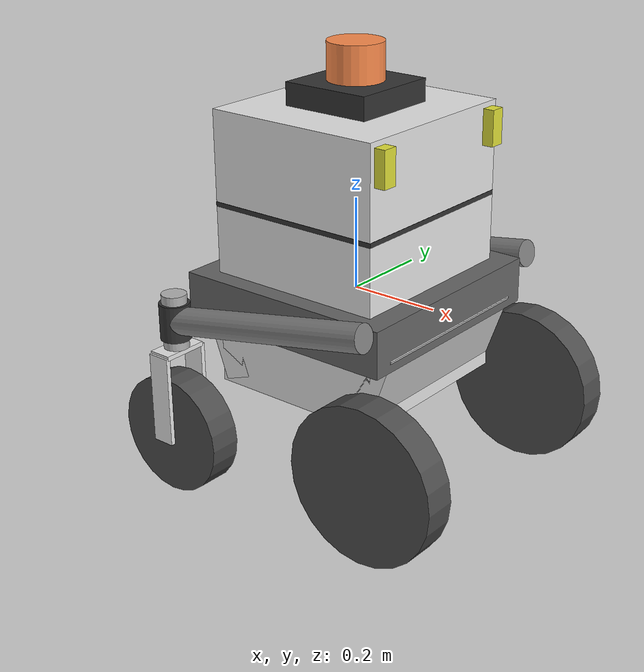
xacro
<robot name="differential_drive_robot" xmlns:xacro="http://www.ros.org/wiki/xacro">
<!-- body dimensions-->

<!--caps -->

<xacro:property name="body_link_x_dim" value="0.5"/>
<xacro:property name="body_link_y_dim" value="0.5"/>
<xacro:property name="body_link_z_dim" value="0.2"/>

<!-- wheel dimensions-->
<xacro:property name="wheel_link_radius" value="0.17"/>
<xacro:property name="wheel_link_length" value="0.07"/>

<xacro:property name="wheel_link_z_location" value="-0.25"/>

<!--caster dimensions-->
<xacro:property name="caster_link_radius" value="0.13"/>
<xacro:property name="caster_link_length" value="0.07"/>

<!--Material density-->
<xacro:property name="wheel_density" value="201.0"/>

<!-- PI constant-->
<xacro:property name="pi_const" value="3.14159265"/>

<!-- Robot body and wheel mass-->

<xacro:property name="body_mass" value="30.0"/> <!--wheel_mass 대략1.13kg나옴-->
<xacro:property name="wheel_mass" value="${wheel_density*pi_const*wheel_link_radius*wheel_link_radius*wheel_link_length}"/>

<!-- Moment of inertia of the wheel-->
<xacro:property name="Iz_wheel" value="${0.5*wheel_mass*wheel_link_radius*wheel_link_radius}"/>
<xacro:property name="I_wheel" value="${(1.0/12.0)*wheel_mass*(3.0*wheel_link_radius*wheel_link_radius+wheel_link_length*wheel_link_length)}"/>

<!-- color -->

<material name="metallic_grey">
    <color rgba="0.5 0.5 0.5 1"/> <!-- 회색조의 금속을 나타내는 색상 -->
</material>

<material name="metallic_black">
    <color rgba="0.2 0.2 0.2 1"/> <!--캐스터 관절 -->
</material>

<material name="metallic_black_bar">
    <color rgba="0.7 0.7 0.7 1"/> <!--캐스터 관절 바 -->
</material>

<material name="metallic_black_bar_W">
    <color rgba="0.9 0.9 0.9 1"/> <!--캐스터 관절 - 바퀴 연결  -->
</material>

<material name="mix">
    <color rgba = "0.88 0.88 0.22 1"/>
  </material>

<material name="coral">
    <color rgba = "0.99 0.55 0.3 1"/>
  </material>

<material name="blue">
    <color rgba = "0 0 0.8 1"/>
  </material>

  <material name="gray">
    <color rgba = "1 1 1 1"/>
  </material>

  <material name="blueviolet">
    <color rgba = "0.222 0.888 0.38 1"/>
  </material>

  <material name="changF">
    <color rgba = "0.4 0.4 0.4 1"/>
  </material>

  <material name="changS">
    <color rgba = "0.3 0.3 0.3 1"/>
  </material>

<!-- This macro defines the complete inertial section of the wheel-->
<!-- It is used later in the code -->
<xacro:macro name="inertia_wheel">
        <inertial>
        <origin rpy="0 0 0" xyz="0 0 0"/>
        <mass value="${wheel_mass}"/>
        <inertia ixx="${I_wheel}" ixy="0.0" ixz="0.0" iyy="${I_wheel}" iyz="0" izz="${Iz_wheel}"/>
        </inertial>
</xacro:macro>

<!-- over here we includethe file that defines extra Gazebo options and motion control driver-->
<xacro:include filename="$(find robot_model_pkg)/urdf/robot.gazebo"/>

<!-- FROM HERE WE DEFINE LINKS, JPOINTS BY CHANG JUN LEE-->

<!-- we need to have this footprint link otherwise Gazebo will complain-->
<link name="footprint">
</link>
<joint name="footprint_joint" type="fixed">
        <parent link="footprint"/>
        <child link="base_link"/>
</joint>

<!-- START : BODY LINK OF THE ROBOT-->

<link name="base_link">
        <visual>
                <geometry>
                        <box size="${body_link_x_dim} ${body_link_y_dim} ${body_link_z_dim-0.1}" />
                </geometry>
                <material name = "changF"/>
                <origin rpy="0 0 0" xyz="0 0 0" />
        </visual>

        <visual>
                <geometry>
                        <cylinder length="0.50" radius="0.03"/>
                </geometry>
                  <material name="metallic_grey"/>
                 <!--origin xyz = "0 0.30 0" rpy = "0 1.570795 0"/-->           <!--왼쪽 캐스터지지대 -->
                 <!--origin rpy="0 1.22173 0" xyz="0 0 0" 70도 회전        각 사이드 바 5도:0.0872665        /-->
                <origin xyz = "0 0.298 0.006" rpy = "0 1.396263 -0.0523599"/> <!--80도 회전,3도 회전-->
        </visual>

        <visual>
                <geometry>
                        <cylinder length="0.50" radius="0.03"/>
                </geometry>
                  <material name="metallic_grey"/>
                 <!--origin xyz = "0 0.30 0" rpy = "0 1.570795 0"/-->
                 <!--origin rpy="0 1.22173 0" xyz="0 0 0" 70도 회전        오른쪽 캐스터 지지대    /-->
                <origin xyz = "0 -0.298 0.006" rpy = "0 1.396263 0.0523599"/> <!--80도 회전-->
        </visual>

<!--###################################left caster part ###########################################-->

        <visual>
                <geometry>
                        <cylinder length="0.08" radius="0.033"/>   <!--caster 관절 부분 -->
                </geometry>
                  <material name="metallic_black"/>
                 <!--origin xyz = "0 0.30 0" rpy = "0 1.570795 0"/-->
                 <!--origin rpy="0 1.22173 0" xyz="0 0 0" 70도 회전/-->
                <origin xyz = "-0.235 0.310 -0.035" rpy = "0 0 0"/>
        </visual>

        <visual>
                <geometry>
                        <cylinder length="0.12" radius="0.027"/>   <!--caster 관절 바 부분 -->
                </geometry>
                  <material name="metallic_black_bar"/>
                 <!--origin xyz = "0 0.30 0" rpy = "0 1.570795 0"/-->
                 <!--origin rpy="0 1.22173 0" xyz="0 0 0" 70도 회전/-->
                <origin xyz = "-0.235 0.310 -0.035" rpy = "0 0 0"/>
        </visual>

        <visual>
                <geometry>
                        <box size= "0.05 0.1 0.01"/>        <!--caster 관절 바 - 바퀴 연결 부분 -->
                </geometry>
                  <material name="metallic_black_bar_W"/>
                 <!--origin xyz = "0 0.30 0" rpy = "0 1.570795 0"/-->
                 <!--origin rpy="0 1.22173 0" xyz="0 0 0" 70도 회전/-->
                <origin xyz = "-0.235 0.310 -0.1" rpy = "0 0 0"/>
        </visual>

        <visual>
                <geometry>
                        <box size= "0.05 0.20 0.01"/>        <!--caster 관절 바 - 바퀴 연결 일자 겉 부분 -->
                </geometry>
                  <material name="metallic_black_bar_W"/>
                 <!--origin xyz = "0 0.30 0" rpy = "0 1.570795 0"/-->
                 <!--origin rpy="0 1.22173 0" xyz="0 0 0" 70도 회전/-->
                <origin xyz = "-0.235 0.360 -0.20" rpy = "1.570795 0 0"/>
        </visual>

        <visual>
                <geometry>
                        <box size= "0.05 0.20 0.01"/>        <!--caster 관절 바 - 바퀴 연결 일자 속 부분 -->
                </geometry>
                  <material name="metallic_black_bar_W"/>
                 <!--origin xyz = "0 0.30 0" rpy = "0 1.570795 0"/-->
                 <!--origin rpy="0 1.22173 0" xyz="0 0 0" 70도 회전/-->
                <origin xyz = "-0.235 0.26 -0.20" rpy = "1.570795 0 0"/>
        </visual>

<!--###################################Right caster part ###########################################-->

        <visual>
                <geometry>
                        <cylinder length="0.08" radius="0.033"/>   <!--caster 관절 부분 -->
                </geometry>
                  <material name="metallic_black"/>
                 <!--origin xyz = "0 0.30 0" rpy = "0 1.570795 0"/-->
                 <!--origin rpy="0 1.22173 0" xyz="0 0 0" 70도 회전/-->
                <origin xyz = "-0.235 -0.310 -0.035" rpy = "0 0 0"/>
        </visual>

        <visual>
                <geometry>
                        <cylinder length="0.12" radius="0.027"/>   <!--caster 관절 바 부분 -->
                </geometry>
                  <material name="metallic_black_bar"/>
                 <!--origin xyz = "0 0.30 0" rpy = "0 1.570795 0"/-->
                 <!--origin rpy="0 1.22173 0" xyz="0 0 0" 70도 회전/-->
                <origin xyz = "-0.235 -0.310 -0.035" rpy = "0 0 0"/>
        </visual>

        <visual>
                <geometry>
                        <box size= "0.05 0.1 0.01"/>        <!--caster 관절 바 - 바퀴 연결 부분 -->
                </geometry>
                  <material name="metallic_black_bar_W"/>
                 <!--origin xyz = "0 0.30 0" rpy = "0 1.570795 0"/-->
                 <!--origin rpy="0 1.22173 0" xyz="0 0 0" 70도 회전/-->
                <origin xyz = "-0.235 -0.310 -0.1" rpy = "0 0 0"/>
        </visual>

        <visual>
                <geometry>
                        <box size= "0.05 0.20 0.01"/>        <!--caster 관절 바 - 바퀴 연결 일자 밖 부분 -->
                </geometry>
                  <material name="metallic_black_bar_W"/>
                 <!--origin xyz = "0 0.30 0" rpy = "0 1.570795 0"/-->
                 <!--origin rpy="0 1.22173 0" xyz="0 0 0" 70도 회전/-->
                <origin xyz = "-0.235 -0.360 -0.20" rpy = "1.570795 0 0"/>
        </visual>

        <visual>
                <geometry>
                        <box size= "0.05 0.20 0.01"/>        <!--caster 관절 바 - 바퀴 연결 일자 속 부분 -->
                </geometry>
                  <material name="metallic_black_bar_W"/>
                 <!--origin xyz = "0 0.30 0" rpy = "0 1.570795 0"/-->
                 <!--origin rpy="0 1.22173 0" xyz="0 0 0" 70도 회전/-->
                <origin xyz = "-0.235 -0.26 -0.20" rpy = "1.570795 0 0"/>
        </visual>

<!--################################### under base ###########################################-->
        <visual>
                <geometry>
                        <box size="${body_link_x_dim-0.1} ${body_link_y_dim/1.2} ${body_link_z_dim}" />
                </geometry>
                <material name = "metallic_black_bar_W"/>
                <origin rpy="0 0 0" xyz="0 0 -0.1" />
        </visual>

        <visual>
                <geometry>                      <!--번호판 느낌-->
                        <box size="0.18 ${body_link_y_dim/1.2} ${body_link_z_dim/3}" />
                </geometry>
                <material name = "metallic_black_bar_W"/>
                <origin rpy="0 1.919862 0" xyz="0.19 0 -0.1" />
        </visual>

        <visual>
                <geometry>                      <!--번호판 느낌-->
                        <box size="0.18 ${body_link_y_dim/1.2} ${body_link_z_dim/3}" />
                </geometry>
                <material name = "metallic_black_bar_W"/>
                <origin rpy="0 -1.919862 0" xyz="-0.19 0 -0.1" />
        </visual>

<!--################################### drawer base ###########################################-->
        <visual>
                <geometry>              <!--1층 서랍-->
                        <box size="${body_link_x_dim-0.1} ${body_link_y_dim/1.2} ${body_link_z_dim}" />
                </geometry>
                <material name = "metallic_black_bar_W"/>
                <origin rpy="0 0 0" xyz="0 0 0.1" />
        </visual>

        <visual>
                <geometry>              <!--1층 서랍 손잡이-->
                        <box size="${(body_link_x_dim-0.2)/2} ${body_link_y_dim/2} ${body_link_z_dim/3.3}" />
                </geometry>
                <material name = "metallic_black_bar"/>
                <origin rpy="0 0 0" xyz="0 0.095 0.1" />
        </visual>

        <visual>
                <geometry>              <!--1~2층 분리대 -->
                        <box size="${body_link_x_dim-0.099} ${body_link_y_dim/1.199} 0.01" />
                </geometry>
                <material name = "metallic_black"/>
                <origin rpy="0 0 0" xyz="0 0 0.2" />
        </visual>

        <visual>
                <geometry>              <!--2층 서랍-->
                        <box size="${body_link_x_dim-0.1} ${body_link_y_dim/1.2} ${body_link_z_dim}" />
                </geometry>
                <material name = "metallic_black_bar_W"/>
                <origin rpy="0 0 0" xyz="0 0 0.3" />
        </visual>

        <visual>
                <geometry>              <!--2층 서랍 손잡이-->
                        <box size="${(body_link_x_dim-0.2)/2} ${body_link_y_dim/2} ${body_link_z_dim/3.3}" />
                </geometry>
                <material name = "metallic_black_bar"/>
                <origin rpy="0 0 0" xyz="0 0.095 0.28" />
        </visual>

        <visual>
                <geometry>              <!--2층 UWB 센서1-->
                        <box size="${(body_link_x_dim-0.2)/2} ${body_link_y_dim/6.5} ${body_link_z_dim/6}" />
                </geometry>
                <material name = "mix"/>
                <origin rpy="1.570795 0 0" xyz="0.15 0.18 0.35" />
        </visual>

        <visual>
                <geometry>              <!--2층 UWB 센서2-->
                        <box size="${(body_link_x_dim-0.2)/2} ${body_link_y_dim/6.5} ${body_link_z_dim/6}" />
                </geometry>
                <material name = "mix"/>
                <origin rpy="1.570795 0 0" xyz="0.15 -0.18 0.35" />
        </visual>

<!--###############################collision part #######################################-->
        <collision>
                <geometry>
                        <box size="${body_link_x_dim} ${body_link_y_dim} ${body_link_z_dim}" />
                </geometry>
                <origin rpy="0 0 0" xyz="0 0 0" />
        </collision>

        <inertial>
                <origin rpy="0 0 0" xyz="0 0 0" />
                <mass value="${body_mass}"/>
        <inertia
        ixx="${(1/12)*body_mass*(body_link_y_dim*body_link_y_dim+body_link_z_dim*body_link_z_dim)}"
        ixy="0"
        ixz="0"
        iyy="${(1/12)*body_mass*(body_link_x_dim*body_link_x_dim+body_link_z_dim*body_link_z_dim)}"
        iyz="0"
        izz="${(1/12)*body_mass*(body_link_y_dim*body_link_y_dim+body_link_x_dim*body_link_x_dim)}" />
        </inertial>
</link>

<joint name="wheel1_joint" type="continuous">
        <parent link="base_link"/>
        <child link="wheel1_link"/>
        <origin xyz="${-body_link_x_dim/2+3*wheel_link_radius} ${-body_link_y_dim/1.55+wheel_link_length/2} ${wheel_link_z_location}"
        rpy = "0 0 0"/>
        <axis xyz="0 1 0"/>
        <limit effort="1000" velocity="1000"/>
        <dynamics damping="0.2" friction="0.0" />
</joint>

<link name="wheel1_link">
        <visual>
                <origin rpy="1.570795 0 0" xyz="0 0 0"/>
                <geometry>
                        <cylinder length="${wheel_link_length}" radius="${wheel_link_radius}"/>
                </geometry>
                 <material name = "changS"/>

        </visual>

        <collision>
                <origin rpy="1.570795 0 0" xyz="0 0 0"/>
                <geometry>
                        <cylinder length="${wheel_link_length}" radius="${wheel_link_radius}"/>
                </geometry>
        </collision>

        <xacro:inertia_wheel/>
</link>

<!-- END: BACK RIGTH WHEEL OF THE ROBOT AND THE JOINT-->

<!-- START : BACK LEFT WHEEL OF THE ROBOT AND THE JOINT-->

<joint name="wheel2_joint" type="continuous">
        <parent link="base_link"/>
        <child link="wheel2_link"/>
        <origin xyz="${-body_link_x_dim/2+3*wheel_link_radius} ${body_link_y_dim/2+wheel_link_length/2} ${wheel_link_z_location}"
        rpy = "0 0 0"/>
        <axis xyz="0 1 0"/>
        <limit effort="1000" velocity="1000"/>
        <dynamics damping="0.2" friction="0.0" />
</joint>

<link name="wheel2_link">
        <visual>
                <origin rpy="1.570795 0 0" xyz="0 0 0" />
                <geometry>
                        <cylinder length="${wheel_link_length}" radius="${wheel_link_radius}"/>
                </geometry>
                <material name = "changS"/>
        </visual>

        <collision>
                <origin rpy="1.570795 0 0" xyz="0 0 0"/>
                <geometry>
                        <cylinder length="${wheel_link_length}" radius="${wheel_link_radius}"/>
                </geometry>
        </collision>
        <xacro:inertia_wheel/>
</link>

<!-- END: BACK LEFT WHEEL OF THE ROBOT AND THE JOINT-->

<!--이 부분에 caster와 연결되는 joint 설정해보기 -->
 <!--연결 바 위치 정보 origin xyz = "-0.235 -0.310 -0.035" rpy = "0 0 0"/-->

        <!--fixed continuous-->
<joint name="connect2caster_joint_1" type="fixed">
        <parent link="base_link"/>
        <child link="connect2caster_1"/>
         <origin xyz = "-0.235 -0.310 -0.1" rpy = "0 0 0"/>
        <axis xyz="0 0 1"/>
        <limit effort="1000" velocity="1000"/>
        <dynamics damping="0.2" friction="0.0" />
</joint>

<link name="connect2caster_1">
        <visual>
        <origin xyz="0 0 ${wheel_link_z_location+0.06}" rpy = "1.570795 0 0"/>
        <geometry>
                <cylinder length="${wheel_link_length}" radius="${caster_link_radius}"/>
        </geometry>
        <material name = "changS"/>
        </visual>

        <collision>
         <origin xyz="0 0 ${wheel_link_z_location+0.06}" rpy = "1.570795 0 0"/>
        <geometry>
                <cylinder length="${wheel_link_length}" radius="${caster_link_radius}"/>
        </geometry>
    </collision>
    <!--xacro:inertia_wheel/-->
  </link>

<!-- START : caster right & back-->
<!--연결 바 위치 정보 origin xyz = "-0.235 -0.310 -0.035" rpy = "0 0 0"/-->

<!-- START : caster left & back-->

<joint name="connect2caster_joint_2" type="fixed">
        <parent link="base_link"/>
        <child link="connect2caster_2"/>
         <origin xyz = "-0.235 +0.310 -0.1" rpy = "0 0 0"/>
        <axis xyz="0 0 1"/>
        <limit effort="1000" velocity="1000"/>
        <dynamics damping="0.2" friction="0.0" />
</joint>

<link name="connect2caster_2">
        <visual>
        <origin xyz="0 0 ${wheel_link_z_location+0.06}" rpy = "1.570795 0 0"/>
        <geometry>
                <cylinder length="${wheel_link_length}" radius="${caster_link_radius}"/>
        </geometry>
        <material name = "changS"/>
        </visual>

        <collision>
       <origin xyz="0 0 ${wheel_link_z_location+0.06}" rpy = "1.570795 0 0"/>
        <geometry>
                <cylinder length="${wheel_link_length}" radius="${caster_link_radius}"/>
        </geometry>
    </collision>
    <!--xacro:inertia_wheel/-->
  </link>
<!--CASTER PART-->

<!--LIDAR PART-->

  <joint name = "head_scanner" type = "fixed">
    <origin xyz = "0 0 0.45" rpy = "0 0 0"/>
    <parent link = "base_link"/>
    <child link = "base_scan"/>
  </joint>

<link name="base_scan">

        <visual>
                <geometry>              <!--지지판 -->
                        <box size="0.2 0.2 0.05" />
                </geometry>
                <material name = "metallic_black"/>
                <origin rpy="0 0 0" xyz="0 0 -0.026" />
        </visual>

        <visual>                        <!-- lidar -->
        <origin xyz="0 0 0.0395" rpy = "0 0 1.570795"/>
                <geometry>
                        <cylinder length="0.08" radius="0.06"/>
                </geometry>
        <material name="coral"/>
        </visual>

<!-- ################## Lidar collision part ###########################-->
        <collision>
        <origin xyz="0 0 0.457" rpy = "0 0 1.570795"/>
                <geometry>
                        <cylinder length="0.1" radius="0.09"/>
                </geometry>
        </collision>
</link>
<!-- END: FRONT RIGHT WHEEL OF THE ROBOT AND THE JOINT-->
</robot>
